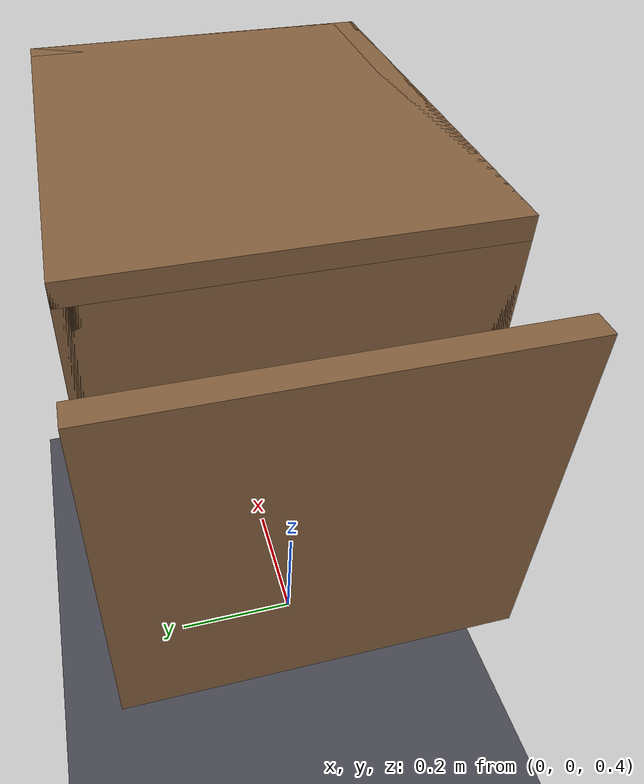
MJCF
<mujoco model="shelf_reach">
  <compiler angle="radian" autolimits="true" boundmass="0" balanceinertia="true"/>
  <option impratio="10" gravity="0 0 -9.8" integrator="implicitfast" cone="elliptic" jacobian="sparse" noslip_iterations="4">
    <flag multiccd="enable" contact="enable" warmstart="enable"/>
  </option>
  <size njmax="5000" nconmax="5000"/>
  <visual>
    <global offwidth="1280" offheight="720"/>
    <map znear="0.001"/>
    <headlight ambient="0.45 0.45 0.45" diffuse="0.6 0.6 0.6"/>
  </visual>
  <default>
    <!-- Physical floor: the object rests on it (and it's the only obstacle the planner must avoid). -->
    <default class="cavity_floor">
      <geom contype="8" conaffinity="15" group="0" friction="0.9 0.9 0.001"
            solref="0.02 1" solimp="0.998 0.998 0.001" density="800" rgba="0.55 0.40 0.26 1"/>
    </default>
    <default class="cavity_wall">
      <geom contype="0" conaffinity="0" group="0" rgba="0.55 0.40 0.26 1"/>
    </default>
  </default>
  <worldbody>
    <light pos="0.4 0.4 3" dir="0 0 -1" diffuse="0.7 0.7 0.7"/>
    <geom name="floor" type="plane" size="5 5 0.1" pos="0 0 0" rgba="0.3 0.3 0.34 1"/>
    <body name="shelf" pos="0 0 0">
      <geom name="sh_bottom"      class="cavity_floor" type="box" pos="0.38 0 0.40"   size="0.38 0.32 0.02"/>
      <geom name="sh_back"        class="cavity_wall"  type="box" pos="0.74 0 0.80"   size="0.02 0.32 0.42"/>
      <geom name="sh_top"         class="cavity_wall"  type="box" pos="0.38 0 1.20"   size="0.38 0.32 0.02"/>
      <geom name="sh_left"        class="cavity_wall"  type="box" pos="0.38 0.30 0.80"  size="0.38 0.02 0.42"/>
      <geom name="sh_right"       class="cavity_wall"  type="box" pos="0.38 -0.30 0.80" size="0.38 0.02 0.42"/>
      <geom name="sh_front_top"   class="cavity_wall"  type="box" pos="0.02 0 1.03"   size="0.02 0.32 0.15"/>
      <geom name="sh_front_left"  class="cavity_wall"  type="box" pos="0.02 0.26 0.66"  size="0.02 0.02 0.22"/>
      <geom name="sh_front_right" class="cavity_wall"  type="box" pos="0.02 -0.26 0.66" size="0.02 0.02 0.22"/>
      <geom name="sh_rear"        class="cavity_wall"  type="box" pos="-0.18 0 0.87"  size="0.02 0.32 0.31"/>
    </body>
  </worldbody>
</mujoco>
